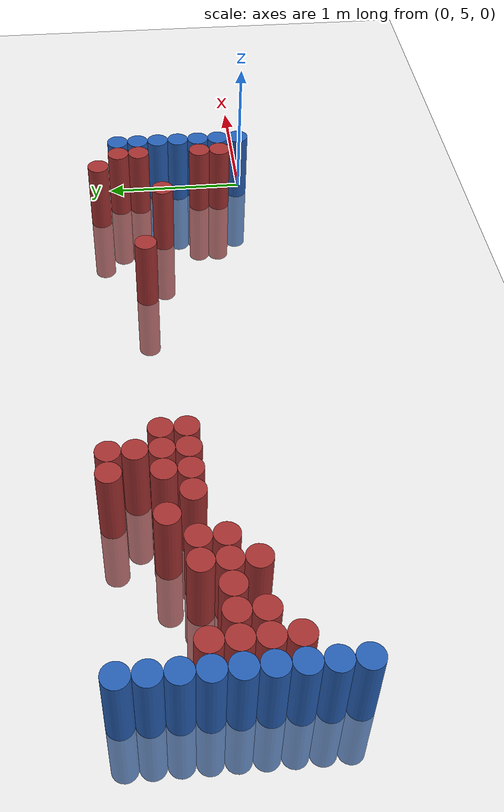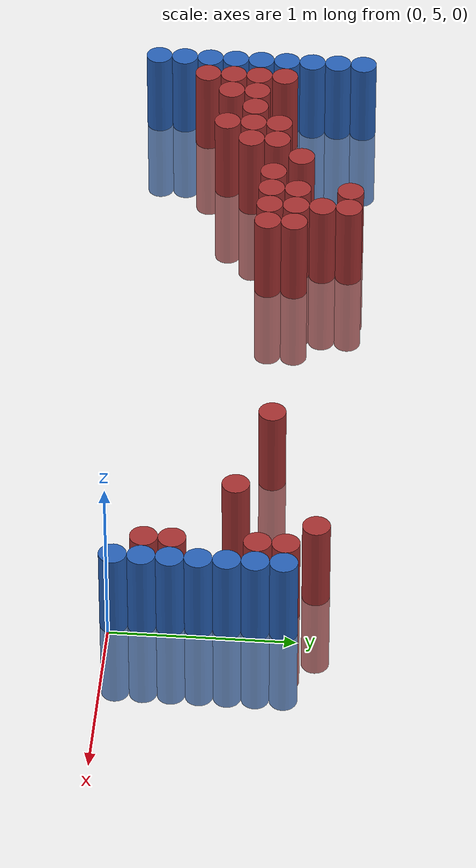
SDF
<sdf version="1.6">
 <world name="default">
  <model name="ground_plane">
   <static>1</static>
   <link name="link">
    <collision name="collision">
     <geometry><plane><normal>0 0 1</normal><size>100 100</size></plane></geometry>
     <surface><friction><ode><mu>100</mu><mu2>50</mu2></ode></friction></surface>
    </collision>
    <visual name="visual">
     <cast_shadows>0</cast_shadows>
     <geometry><plane><normal>0 0 1</normal><size>100 100</size></plane></geometry>
     <material>
      <script><uri>file://media/materials/scripts/gazebo.material</uri><name>Gazebo/Grey</name></script>
     </material>
    </visual>
   </link>
  </model>
  <model name="unit_cylinder_93">
   <static>1</static>
   <pose>-4.425000 4.875000 0.000000 0.000000 0.000000 0.000000</pose>
   <link name="link">
    <inertial>
     <mass>1</mass>
     <inertia><ixx>0.145833</ixx><ixy>0</ixy><ixz>0</ixz><iyy>0.145833</iyy><iyz>0</iyz><izz>0.125</izz></inertia>
    </inertial>
    <collision name="collision">
     <geometry><cylinder><radius>0.075000</radius><length>1</length></cylinder></geometry>
    </collision>
    <visual name="visual">
     <geometry><cylinder><radius>0.075000</radius><length>1</length></cylinder></geometry>
     <material>
      <ambient>0.152000 0.379000 0.720000 1</ambient>
      <diffuse>0.152000 0.379000 0.720000 1</diffuse>
     </material>
     <material>
      <script><name>Gazebo/Grey</name><uri>file://media/materials/scripts/gazebo.material</uri></script>
     </material>
    </visual>
   </link>
  </model>
  <model name="unit_cylinder_94">
   <static>1</static>
   <pose>-0.075000 5.025000 0.000000 0.000000 0.000000 0.000000</pose>
   <link name="link">
    <inertial>
     <mass>1</mass>
     <inertia><ixx>0.145833</ixx><ixy>0</ixy><ixz>0</ixz><iyy>0.145833</iyy><iyz>0</iyz><izz>0.125</izz></inertia>
    </inertial>
    <collision name="collision">
     <geometry><cylinder><radius>0.075000</radius><length>1</length></cylinder></geometry>
    </collision>
    <visual name="visual">
     <geometry><cylinder><radius>0.075000</radius><length>1</length></cylinder></geometry>
     <material>
      <ambient>0.152000 0.379000 0.720000 1</ambient>
      <diffuse>0.152000 0.379000 0.720000 1</diffuse>
     </material>
     <material>
      <script><name>Gazebo/Grey</name><uri>file://media/materials/scripts/gazebo.material</uri></script>
     </material>
    </visual>
   </link>
  </model>
  <model name="unit_cylinder_95">
   <static>1</static>
   <pose>-4.425000 5.025000 0.000000 0.000000 0.000000 0.000000</pose>
   <link name="link">
    <inertial>
     <mass>1</mass>
     <inertia><ixx>0.145833</ixx><ixy>0</ixy><ixz>0</ixz><iyy>0.145833</iyy><iyz>0</iyz><izz>0.125</izz></inertia>
    </inertial>
    <collision name="collision">
     <geometry><cylinder><radius>0.075000</radius><length>1</length></cylinder></geometry>
    </collision>
    <visual name="visual">
     <geometry><cylinder><radius>0.075000</radius><length>1</length></cylinder></geometry>
     <material>
      <ambient>0.152000 0.379000 0.720000 1</ambient>
      <diffuse>0.152000 0.379000 0.720000 1</diffuse>
     </material>
     <material>
      <script><name>Gazebo/Grey</name><uri>file://media/materials/scripts/gazebo.material</uri></script>
     </material>
    </visual>
   </link>
  </model>
  <model name="unit_cylinder_96">
   <static>1</static>
   <pose>-4.425000 5.175000 0.000000 0.000000 0.000000 0.000000</pose>
   <link name="link">
    <inertial>
     <mass>1</mass>
     <inertia><ixx>0.145833</ixx><ixy>0</ixy><ixz>0</ixz><iyy>0.145833</iyy><iyz>0</iyz><izz>0.125</izz></inertia>
    </inertial>
    <collision name="collision">
     <geometry><cylinder><radius>0.075000</radius><length>1</length></cylinder></geometry>
    </collision>
    <visual name="visual">
     <geometry><cylinder><radius>0.075000</radius><length>1</length></cylinder></geometry>
     <material>
      <ambient>0.152000 0.379000 0.720000 1</ambient>
      <diffuse>0.152000 0.379000 0.720000 1</diffuse>
     </material>
     <material>
      <script><name>Gazebo/Grey</name><uri>file://media/materials/scripts/gazebo.material</uri></script>
     </material>
    </visual>
   </link>
  </model>
  <model name="unit_cylinder_97">
   <static>1</static>
   <pose>-4.425000 5.325000 0.000000 0.000000 0.000000 0.000000</pose>
   <link name="link">
    <inertial>
     <mass>1</mass>
     <inertia><ixx>0.145833</ixx><ixy>0</ixy><ixz>0</ixz><iyy>0.145833</iyy><iyz>0</iyz><izz>0.125</izz></inertia>
    </inertial>
    <collision name="collision">
     <geometry><cylinder><radius>0.075000</radius><length>1</length></cylinder></geometry>
    </collision>
    <visual name="visual">
     <geometry><cylinder><radius>0.075000</radius><length>1</length></cylinder></geometry>
     <material>
      <ambient>0.152000 0.379000 0.720000 1</ambient>
      <diffuse>0.152000 0.379000 0.720000 1</diffuse>
     </material>
     <material>
      <script><name>Gazebo/Grey</name><uri>file://media/materials/scripts/gazebo.material</uri></script>
     </material>
    </visual>
   </link>
  </model>
  <model name="unit_cylinder_98">
   <static>1</static>
   <pose>-4.425000 5.475000 0.000000 0.000000 0.000000 0.000000</pose>
   <link name="link">
    <inertial>
     <mass>1</mass>
     <inertia><ixx>0.145833</ixx><ixy>0</ixy><ixz>0</ixz><iyy>0.145833</iyy><iyz>0</iyz><izz>0.125</izz></inertia>
    </inertial>
    <collision name="collision">
     <geometry><cylinder><radius>0.075000</radius><length>1</length></cylinder></geometry>
    </collision>
    <visual name="visual">
     <geometry><cylinder><radius>0.075000</radius><length>1</length></cylinder></geometry>
     <material>
      <ambient>0.152000 0.379000 0.720000 1</ambient>
      <diffuse>0.152000 0.379000 0.720000 1</diffuse>
     </material>
     <material>
      <script><name>Gazebo/Grey</name><uri>file://media/materials/scripts/gazebo.material</uri></script>
     </material>
    </visual>
   </link>
  </model>
  <model name="unit_cylinder_99">
   <static>1</static>
   <pose>-4.425000 5.625000 0.000000 0.000000 0.000000 0.000000</pose>
   <link name="link">
    <inertial>
     <mass>1</mass>
     <inertia><ixx>0.145833</ixx><ixy>0</ixy><ixz>0</ixz><iyy>0.145833</iyy><iyz>0</iyz><izz>0.125</izz></inertia>
    </inertial>
    <collision name="collision">
     <geometry><cylinder><radius>0.075000</radius><length>1</length></cylinder></geometry>
    </collision>
    <visual name="visual">
     <geometry><cylinder><radius>0.075000</radius><length>1</length></cylinder></geometry>
     <material>
      <ambient>0.152000 0.379000 0.720000 1</ambient>
      <diffuse>0.152000 0.379000 0.720000 1</diffuse>
     </material>
     <material>
      <script><name>Gazebo/Grey</name><uri>file://media/materials/scripts/gazebo.material</uri></script>
     </material>
    </visual>
   </link>
  </model>
  <model name="unit_cylinder_100">
   <static>1</static>
   <pose>-4.425000 5.775000 0.000000 0.000000 0.000000 0.000000</pose>
   <link name="link">
    <inertial>
     <mass>1</mass>
     <inertia><ixx>0.145833</ixx><ixy>0</ixy><ixz>0</ixz><iyy>0.145833</iyy><iyz>0</iyz><izz>0.125</izz></inertia>
    </inertial>
    <collision name="collision">
     <geometry><cylinder><radius>0.075000</radius><length>1</length></cylinder></geometry>
    </collision>
    <visual name="visual">
     <geometry><cylinder><radius>0.075000</radius><length>1</length></cylinder></geometry>
     <material>
      <ambient>0.152000 0.379000 0.720000 1</ambient>
      <diffuse>0.152000 0.379000 0.720000 1</diffuse>
     </material>
     <material>
      <script><name>Gazebo/Grey</name><uri>file://media/materials/scripts/gazebo.material</uri></script>
     </material>
    </visual>
   </link>
  </model>
  <model name="unit_cylinder_101">
   <static>1</static>
   <pose>-4.425000 5.925000 0.000000 0.000000 0.000000 0.000000</pose>
   <link name="link">
    <inertial>
     <mass>1</mass>
     <inertia><ixx>0.145833</ixx><ixy>0</ixy><ixz>0</ixz><iyy>0.145833</iyy><iyz>0</iyz><izz>0.125</izz></inertia>
    </inertial>
    <collision name="collision">
     <geometry><cylinder><radius>0.075000</radius><length>1</length></cylinder></geometry>
    </collision>
    <visual name="visual">
     <geometry><cylinder><radius>0.075000</radius><length>1</length></cylinder></geometry>
     <material>
      <ambient>0.152000 0.379000 0.720000 1</ambient>
      <diffuse>0.152000 0.379000 0.720000 1</diffuse>
     </material>
     <material>
      <script><name>Gazebo/Grey</name><uri>file://media/materials/scripts/gazebo.material</uri></script>
     </material>
    </visual>
   </link>
  </model>
  <model name="unit_cylinder_102">
   <static>1</static>
   <pose>-4.425000 6.075000 0.000000 0.000000 0.000000 0.000000</pose>
   <link name="link">
    <inertial>
     <mass>1</mass>
     <inertia><ixx>0.145833</ixx><ixy>0</ixy><ixz>0</ixz><iyy>0.145833</iyy><iyz>0</iyz><izz>0.125</izz></inertia>
    </inertial>
    <collision name="collision">
     <geometry><cylinder><radius>0.075000</radius><length>1</length></cylinder></geometry>
    </collision>
    <visual name="visual">
     <geometry><cylinder><radius>0.075000</radius><length>1</length></cylinder></geometry>
     <material>
      <ambient>0.152000 0.379000 0.720000 1</ambient>
      <diffuse>0.152000 0.379000 0.720000 1</diffuse>
     </material>
     <material>
      <script><name>Gazebo/Grey</name><uri>file://media/materials/scripts/gazebo.material</uri></script>
     </material>
    </visual>
   </link>
  </model>
  <model name="unit_cylinder_126">
   <static>1</static>
   <pose>-4.275000 5.175000 0.000000 0.000000 0.000000 0.000000</pose>
   <link name="link">
    <inertial>
     <mass>1</mass>
     <inertia><ixx>0.145833</ixx><ixy>0</ixy><ixz>0</ixz><iyy>0.145833</iyy><iyz>0</iyz><izz>0.125</izz></inertia>
    </inertial>
    <collision name="collision">
     <geometry><cylinder><radius>0.075000</radius><length>1</length></cylinder></geometry>
    </collision>
    <visual name="visual">
     <geometry><cylinder><radius>0.075000</radius><length>1</length></cylinder></geometry>
     <material>
      <ambient>0.648000 0.192000 0.192000 1</ambient>
      <diffuse>0.648000 0.192000 0.192000 1</diffuse>
     </material>
     <material>
      <script><name>Gazebo/Grey</name><uri>file://media/materials/scripts/gazebo.material</uri></script>
     </material>
    </visual>
   </link>
  </model>
  <model name="unit_cylinder_127">
   <static>1</static>
   <pose>-4.275000 5.325000 0.000000 0.000000 0.000000 0.000000</pose>
   <link name="link">
    <inertial>
     <mass>1</mass>
     <inertia><ixx>0.145833</ixx><ixy>0</ixy><ixz>0</ixz><iyy>0.145833</iyy><iyz>0</iyz><izz>0.125</izz></inertia>
    </inertial>
    <collision name="collision">
     <geometry><cylinder><radius>0.075000</radius><length>1</length></cylinder></geometry>
    </collision>
    <visual name="visual">
     <geometry><cylinder><radius>0.075000</radius><length>1</length></cylinder></geometry>
     <material>
      <ambient>0.648000 0.192000 0.192000 1</ambient>
      <diffuse>0.648000 0.192000 0.192000 1</diffuse>
     </material>
     <material>
      <script><name>Gazebo/Grey</name><uri>file://media/materials/scripts/gazebo.material</uri></script>
     </material>
    </visual>
   </link>
  </model>
  <model name="unit_cylinder_128">
   <static>1</static>
   <pose>-4.275000 5.475000 0.000000 0.000000 0.000000 0.000000</pose>
   <link name="link">
    <inertial>
     <mass>1</mass>
     <inertia><ixx>0.145833</ixx><ixy>0</ixy><ixz>0</ixz><iyy>0.145833</iyy><iyz>0</iyz><izz>0.125</izz></inertia>
    </inertial>
    <collision name="collision">
     <geometry><cylinder><radius>0.075000</radius><length>1</length></cylinder></geometry>
    </collision>
    <visual name="visual">
     <geometry><cylinder><radius>0.075000</radius><length>1</length></cylinder></geometry>
     <material>
      <ambient>0.648000 0.192000 0.192000 1</ambient>
      <diffuse>0.648000 0.192000 0.192000 1</diffuse>
     </material>
     <material>
      <script><name>Gazebo/Grey</name><uri>file://media/materials/scripts/gazebo.material</uri></script>
     </material>
    </visual>
   </link>
  </model>
  <model name="unit_cylinder_129">
   <static>1</static>
   <pose>-4.275000 5.625000 0.000000 0.000000 0.000000 0.000000</pose>
   <link name="link">
    <inertial>
     <mass>1</mass>
     <inertia><ixx>0.145833</ixx><ixy>0</ixy><ixz>0</ixz><iyy>0.145833</iyy><iyz>0</iyz><izz>0.125</izz></inertia>
    </inertial>
    <collision name="collision">
     <geometry><cylinder><radius>0.075000</radius><length>1</length></cylinder></geometry>
    </collision>
    <visual name="visual">
     <geometry><cylinder><radius>0.075000</radius><length>1</length></cylinder></geometry>
     <material>
      <ambient>0.648000 0.192000 0.192000 1</ambient>
      <diffuse>0.648000 0.192000 0.192000 1</diffuse>
     </material>
     <material>
      <script><name>Gazebo/Grey</name><uri>file://media/materials/scripts/gazebo.material</uri></script>
     </material>
    </visual>
   </link>
  </model>
  <model name="unit_cylinder_140">
   <static>1</static>
   <pose>-4.125000 5.325000 0.000000 0.000000 0.000000 0.000000</pose>
   <link name="link">
    <inertial>
     <mass>1</mass>
     <inertia><ixx>0.145833</ixx><ixy>0</ixy><ixz>0</ixz><iyy>0.145833</iyy><iyz>0</iyz><izz>0.125</izz></inertia>
    </inertial>
    <collision name="collision">
     <geometry><cylinder><radius>0.075000</radius><length>1</length></cylinder></geometry>
    </collision>
    <visual name="visual">
     <geometry><cylinder><radius>0.075000</radius><length>1</length></cylinder></geometry>
     <material>
      <ambient>0.648000 0.192000 0.192000 1</ambient>
      <diffuse>0.648000 0.192000 0.192000 1</diffuse>
     </material>
     <material>
      <script><name>Gazebo/Grey</name><uri>file://media/materials/scripts/gazebo.material</uri></script>
     </material>
    </visual>
   </link>
  </model>
  <model name="unit_cylinder_141">
   <static>1</static>
   <pose>-4.125000 5.475000 0.000000 0.000000 0.000000 0.000000</pose>
   <link name="link">
    <inertial>
     <mass>1</mass>
     <inertia><ixx>0.145833</ixx><ixy>0</ixy><ixz>0</ixz><iyy>0.145833</iyy><iyz>0</iyz><izz>0.125</izz></inertia>
    </inertial>
    <collision name="collision">
     <geometry><cylinder><radius>0.075000</radius><length>1</length></cylinder></geometry>
    </collision>
    <visual name="visual">
     <geometry><cylinder><radius>0.075000</radius><length>1</length></cylinder></geometry>
     <material>
      <ambient>0.648000 0.192000 0.192000 1</ambient>
      <diffuse>0.648000 0.192000 0.192000 1</diffuse>
     </material>
     <material>
      <script><name>Gazebo/Grey</name><uri>file://media/materials/scripts/gazebo.material</uri></script>
     </material>
    </visual>
   </link>
  </model>
  <model name="unit_cylinder_144">
   <static>1</static>
   <pose>-3.975000 5.475000 0.000000 0.000000 0.000000 0.000000</pose>
   <link name="link">
    <inertial>
     <mass>1</mass>
     <inertia><ixx>0.145833</ixx><ixy>0</ixy><ixz>0</ixz><iyy>0.145833</iyy><iyz>0</iyz><izz>0.125</izz></inertia>
    </inertial>
    <collision name="collision">
     <geometry><cylinder><radius>0.075000</radius><length>1</length></cylinder></geometry>
    </collision>
    <visual name="visual">
     <geometry><cylinder><radius>0.075000</radius><length>1</length></cylinder></geometry>
     <material>
      <ambient>0.648000 0.192000 0.192000 1</ambient>
      <diffuse>0.648000 0.192000 0.192000 1</diffuse>
     </material>
     <material>
      <script><name>Gazebo/Grey</name><uri>file://media/materials/scripts/gazebo.material</uri></script>
     </material>
    </visual>
   </link>
  </model>
  <model name="unit_cylinder_148">
   <static>1</static>
   <pose>-3.825000 5.325000 0.000000 0.000000 0.000000 0.000000</pose>
   <link name="link">
    <inertial>
     <mass>1</mass>
     <inertia><ixx>0.145833</ixx><ixy>0</ixy><ixz>0</ixz><iyy>0.145833</iyy><iyz>0</iyz><izz>0.125</izz></inertia>
    </inertial>
    <collision name="collision">
     <geometry><cylinder><radius>0.075000</radius><length>1</length></cylinder></geometry>
    </collision>
    <visual name="visual">
     <geometry><cylinder><radius>0.075000</radius><length>1</length></cylinder></geometry>
     <material>
      <ambient>0.648000 0.192000 0.192000 1</ambient>
      <diffuse>0.648000 0.192000 0.192000 1</diffuse>
     </material>
     <material>
      <script><name>Gazebo/Grey</name><uri>file://media/materials/scripts/gazebo.material</uri></script>
     </material>
    </visual>
   </link>
  </model>
  <model name="unit_cylinder_149">
   <static>1</static>
   <pose>-3.825000 5.475000 0.000000 0.000000 0.000000 0.000000</pose>
   <link name="link">
    <inertial>
     <mass>1</mass>
     <inertia><ixx>0.145833</ixx><ixy>0</ixy><ixz>0</ixz><iyy>0.145833</iyy><iyz>0</iyz><izz>0.125</izz></inertia>
    </inertial>
    <collision name="collision">
     <geometry><cylinder><radius>0.075000</radius><length>1</length></cylinder></geometry>
    </collision>
    <visual name="visual">
     <geometry><cylinder><radius>0.075000</radius><length>1</length></cylinder></geometry>
     <material>
      <ambient>0.648000 0.192000 0.192000 1</ambient>
      <diffuse>0.648000 0.192000 0.192000 1</diffuse>
     </material>
     <material>
      <script><name>Gazebo/Grey</name><uri>file://media/materials/scripts/gazebo.material</uri></script>
     </material>
    </visual>
   </link>
  </model>
  <model name="unit_cylinder_150">
   <static>1</static>
   <pose>-3.825000 5.625000 0.000000 0.000000 0.000000 0.000000</pose>
   <link name="link">
    <inertial>
     <mass>1</mass>
     <inertia><ixx>0.145833</ixx><ixy>0</ixy><ixz>0</ixz><iyy>0.145833</iyy><iyz>0</iyz><izz>0.125</izz></inertia>
    </inertial>
    <collision name="collision">
     <geometry><cylinder><radius>0.075000</radius><length>1</length></cylinder></geometry>
    </collision>
    <visual name="visual">
     <geometry><cylinder><radius>0.075000</radius><length>1</length></cylinder></geometry>
     <material>
      <ambient>0.648000 0.192000 0.192000 1</ambient>
      <diffuse>0.648000 0.192000 0.192000 1</diffuse>
     </material>
     <material>
      <script><name>Gazebo/Grey</name><uri>file://media/materials/scripts/gazebo.material</uri></script>
     </material>
    </visual>
   </link>
  </model>
  <model name="unit_cylinder_154">
   <static>1</static>
   <pose>-3.675000 5.475000 0.000000 0.000000 0.000000 0.000000</pose>
   <link name="link">
    <inertial>
     <mass>1</mass>
     <inertia><ixx>0.145833</ixx><ixy>0</ixy><ixz>0</ixz><iyy>0.145833</iyy><iyz>0</iyz><izz>0.125</izz></inertia>
    </inertial>
    <collision name="collision">
     <geometry><cylinder><radius>0.075000</radius><length>1</length></cylinder></geometry>
    </collision>
    <visual name="visual">
     <geometry><cylinder><radius>0.075000</radius><length>1</length></cylinder></geometry>
     <material>
      <ambient>0.648000 0.192000 0.192000 1</ambient>
      <diffuse>0.648000 0.192000 0.192000 1</diffuse>
     </material>
     <material>
      <script><name>Gazebo/Grey</name><uri>file://media/materials/scripts/gazebo.material</uri></script>
     </material>
    </visual>
   </link>
  </model>
  <model name="unit_cylinder_155">
   <static>1</static>
   <pose>-3.675000 5.625000 0.000000 0.000000 0.000000 0.000000</pose>
   <link name="link">
    <inertial>
     <mass>1</mass>
     <inertia><ixx>0.145833</ixx><ixy>0</ixy><ixz>0</ixz><iyy>0.145833</iyy><iyz>0</iyz><izz>0.125</izz></inertia>
    </inertial>
    <collision name="collision">
     <geometry><cylinder><radius>0.075000</radius><length>1</length></cylinder></geometry>
    </collision>
    <visual name="visual">
     <geometry><cylinder><radius>0.075000</radius><length>1</length></cylinder></geometry>
     <material>
      <ambient>0.648000 0.192000 0.192000 1</ambient>
      <diffuse>0.648000 0.192000 0.192000 1</diffuse>
     </material>
     <material>
      <script><name>Gazebo/Grey</name><uri>file://media/materials/scripts/gazebo.material</uri></script>
     </material>
    </visual>
   </link>
  </model>
  <model name="unit_cylinder_158">
   <static>1</static>
   <pose>-3.525000 5.775000 0.000000 0.000000 0.000000 0.000000</pose>
   <link name="link">
    <inertial>
     <mass>1</mass>
     <inertia><ixx>0.145833</ixx><ixy>0</ixy><ixz>0</ixz><iyy>0.145833</iyy><iyz>0</iyz><izz>0.125</izz></inertia>
    </inertial>
    <collision name="collision">
     <geometry><cylinder><radius>0.075000</radius><length>1</length></cylinder></geometry>
    </collision>
    <visual name="visual">
     <geometry><cylinder><radius>0.075000</radius><length>1</length></cylinder></geometry>
     <material>
      <ambient>0.648000 0.192000 0.192000 1</ambient>
      <diffuse>0.648000 0.192000 0.192000 1</diffuse>
     </material>
     <material>
      <script><name>Gazebo/Grey</name><uri>file://media/materials/scripts/gazebo.material</uri></script>
     </material>
    </visual>
   </link>
  </model>
  <model name="unit_cylinder_165">
   <static>1</static>
   <pose>-3.375000 5.625000 0.000000 0.000000 0.000000 0.000000</pose>
   <link name="link">
    <inertial>
     <mass>1</mass>
     <inertia><ixx>0.145833</ixx><ixy>0</ixy><ixz>0</ixz><iyy>0.145833</iyy><iyz>0</iyz><izz>0.125</izz></inertia>
    </inertial>
    <collision name="collision">
     <geometry><cylinder><radius>0.075000</radius><length>1</length></cylinder></geometry>
    </collision>
    <visual name="visual">
     <geometry><cylinder><radius>0.075000</radius><length>1</length></cylinder></geometry>
     <material>
      <ambient>0.648000 0.192000 0.192000 1</ambient>
      <diffuse>0.648000 0.192000 0.192000 1</diffuse>
     </material>
     <material>
      <script><name>Gazebo/Grey</name><uri>file://media/materials/scripts/gazebo.material</uri></script>
     </material>
    </visual>
   </link>
  </model>
  <model name="unit_cylinder_169">
   <static>1</static>
   <pose>-3.225000 5.625000 0.000000 0.000000 0.000000 0.000000</pose>
   <link name="link">
    <inertial>
     <mass>1</mass>
     <inertia><ixx>0.145833</ixx><ixy>0</ixy><ixz>0</ixz><iyy>0.145833</iyy><iyz>0</iyz><izz>0.125</izz></inertia>
    </inertial>
    <collision name="collision">
     <geometry><cylinder><radius>0.075000</radius><length>1</length></cylinder></geometry>
    </collision>
    <visual name="visual">
     <geometry><cylinder><radius>0.075000</radius><length>1</length></cylinder></geometry>
     <material>
      <ambient>0.648000 0.192000 0.192000 1</ambient>
      <diffuse>0.648000 0.192000 0.192000 1</diffuse>
     </material>
     <material>
      <script><name>Gazebo/Grey</name><uri>file://media/materials/scripts/gazebo.material</uri></script>
     </material>
    </visual>
   </link>
  </model>
  <model name="unit_cylinder_170">
   <static>1</static>
   <pose>-3.225000 5.775000 0.000000 0.000000 0.000000 0.000000</pose>
   <link name="link">
    <inertial>
     <mass>1</mass>
     <inertia><ixx>0.145833</ixx><ixy>0</ixy><ixz>0</ixz><iyy>0.145833</iyy><iyz>0</iyz><izz>0.125</izz></inertia>
    </inertial>
    <collision name="collision">
     <geometry><cylinder><radius>0.075000</radius><length>1</length></cylinder></geometry>
    </collision>
    <visual name="visual">
     <geometry><cylinder><radius>0.075000</radius><length>1</length></cylinder></geometry>
     <material>
      <ambient>0.648000 0.192000 0.192000 1</ambient>
      <diffuse>0.648000 0.192000 0.192000 1</diffuse>
     </material>
     <material>
      <script><name>Gazebo/Grey</name><uri>file://media/materials/scripts/gazebo.material</uri></script>
     </material>
    </visual>
   </link>
  </model>
  <model name="unit_cylinder_171">
   <static>1</static>
   <pose>-3.225000 6.075000 0.000000 0.000000 0.000000 0.000000</pose>
   <link name="link">
    <inertial>
     <mass>1</mass>
     <inertia><ixx>0.145833</ixx><ixy>0</ixy><ixz>0</ixz><iyy>0.145833</iyy><iyz>0</iyz><izz>0.125</izz></inertia>
    </inertial>
    <collision name="collision">
     <geometry><cylinder><radius>0.075000</radius><length>1</length></cylinder></geometry>
    </collision>
    <visual name="visual">
     <geometry><cylinder><radius>0.075000</radius><length>1</length></cylinder></geometry>
     <material>
      <ambient>0.648000 0.192000 0.192000 1</ambient>
      <diffuse>0.648000 0.192000 0.192000 1</diffuse>
     </material>
     <material>
      <script><name>Gazebo/Grey</name><uri>file://media/materials/scripts/gazebo.material</uri></script>
     </material>
    </visual>
   </link>
  </model>
  <model name="unit_cylinder_177">
   <static>1</static>
   <pose>-3.075000 5.625000 0.000000 0.000000 0.000000 0.000000</pose>
   <link name="link">
    <inertial>
     <mass>1</mass>
     <inertia><ixx>0.145833</ixx><ixy>0</ixy><ixz>0</ixz><iyy>0.145833</iyy><iyz>0</iyz><izz>0.125</izz></inertia>
    </inertial>
    <collision name="collision">
     <geometry><cylinder><radius>0.075000</radius><length>1</length></cylinder></geometry>
    </collision>
    <visual name="visual">
     <geometry><cylinder><radius>0.075000</radius><length>1</length></cylinder></geometry>
     <material>
      <ambient>0.648000 0.192000 0.192000 1</ambient>
      <diffuse>0.648000 0.192000 0.192000 1</diffuse>
     </material>
     <material>
      <script><name>Gazebo/Grey</name><uri>file://media/materials/scripts/gazebo.material</uri></script>
     </material>
    </visual>
   </link>
  </model>
  <model name="unit_cylinder_178">
   <static>1</static>
   <pose>-3.075000 5.775000 0.000000 0.000000 0.000000 0.000000</pose>
   <link name="link">
    <inertial>
     <mass>1</mass>
     <inertia><ixx>0.145833</ixx><ixy>0</ixy><ixz>0</ixz><iyy>0.145833</iyy><iyz>0</iyz><izz>0.125</izz></inertia>
    </inertial>
    <collision name="collision">
     <geometry><cylinder><radius>0.075000</radius><length>1</length></cylinder></geometry>
    </collision>
    <visual name="visual">
     <geometry><cylinder><radius>0.075000</radius><length>1</length></cylinder></geometry>
     <material>
      <ambient>0.648000 0.192000 0.192000 1</ambient>
      <diffuse>0.648000 0.192000 0.192000 1</diffuse>
     </material>
     <material>
      <script><name>Gazebo/Grey</name><uri>file://media/materials/scripts/gazebo.material</uri></script>
     </material>
    </visual>
   </link>
  </model>
  <model name="unit_cylinder_179">
   <static>1</static>
   <pose>-3.075000 5.925000 0.000000 0.000000 0.000000 0.000000</pose>
   <link name="link">
    <inertial>
     <mass>1</mass>
     <inertia><ixx>0.145833</ixx><ixy>0</ixy><ixz>0</ixz><iyy>0.145833</iyy><iyz>0</iyz><izz>0.125</izz></inertia>
    </inertial>
    <collision name="collision">
     <geometry><cylinder><radius>0.075000</radius><length>1</length></cylinder></geometry>
    </collision>
    <visual name="visual">
     <geometry><cylinder><radius>0.075000</radius><length>1</length></cylinder></geometry>
     <material>
      <ambient>0.648000 0.192000 0.192000 1</ambient>
      <diffuse>0.648000 0.192000 0.192000 1</diffuse>
     </material>
     <material>
      <script><name>Gazebo/Grey</name><uri>file://media/materials/scripts/gazebo.material</uri></script>
     </material>
    </visual>
   </link>
  </model>
  <model name="unit_cylinder_180">
   <static>1</static>
   <pose>-3.075000 6.075000 0.000000 0.000000 0.000000 0.000000</pose>
   <link name="link">
    <inertial>
     <mass>1</mass>
     <inertia><ixx>0.145833</ixx><ixy>0</ixy><ixz>0</ixz><iyy>0.145833</iyy><iyz>0</iyz><izz>0.125</izz></inertia>
    </inertial>
    <collision name="collision">
     <geometry><cylinder><radius>0.075000</radius><length>1</length></cylinder></geometry>
    </collision>
    <visual name="visual">
     <geometry><cylinder><radius>0.075000</radius><length>1</length></cylinder></geometry>
     <material>
      <ambient>0.648000 0.192000 0.192000 1</ambient>
      <diffuse>0.648000 0.192000 0.192000 1</diffuse>
     </material>
     <material>
      <script><name>Gazebo/Grey</name><uri>file://media/materials/scripts/gazebo.material</uri></script>
     </material>
    </visual>
   </link>
  </model>
  <model name="unit_cylinder_182">
   <static>1</static>
   <pose>-2.925000 5.625000 0.000000 0.000000 0.000000 0.000000</pose>
   <link name="link">
    <inertial>
     <mass>1</mass>
     <inertia><ixx>0.145833</ixx><ixy>0</ixy><ixz>0</ixz><iyy>0.145833</iyy><iyz>0</iyz><izz>0.125</izz></inertia>
    </inertial>
    <collision name="collision">
     <geometry><cylinder><radius>0.075000</radius><length>1</length></cylinder></geometry>
    </collision>
    <visual name="visual">
     <geometry><cylinder><radius>0.075000</radius><length>1</length></cylinder></geometry>
     <material>
      <ambient>0.648000 0.192000 0.192000 1</ambient>
      <diffuse>0.648000 0.192000 0.192000 1</diffuse>
     </material>
     <material>
      <script><name>Gazebo/Grey</name><uri>file://media/materials/scripts/gazebo.material</uri></script>
     </material>
    </visual>
   </link>
  </model>
  <model name="unit_cylinder_183">
   <static>1</static>
   <pose>-2.925000 5.775000 0.000000 0.000000 0.000000 0.000000</pose>
   <link name="link">
    <inertial>
     <mass>1</mass>
     <inertia><ixx>0.145833</ixx><ixy>0</ixy><ixz>0</ixz><iyy>0.145833</iyy><iyz>0</iyz><izz>0.125</izz></inertia>
    </inertial>
    <collision name="collision">
     <geometry><cylinder><radius>0.075000</radius><length>1</length></cylinder></geometry>
    </collision>
    <visual name="visual">
     <geometry><cylinder><radius>0.075000</radius><length>1</length></cylinder></geometry>
     <material>
      <ambient>0.648000 0.192000 0.192000 1</ambient>
      <diffuse>0.648000 0.192000 0.192000 1</diffuse>
     </material>
     <material>
      <script><name>Gazebo/Grey</name><uri>file://media/materials/scripts/gazebo.material</uri></script>
     </material>
    </visual>
   </link>
  </model>
  <model name="unit_cylinder_211">
   <static>1</static>
   <pose>-1.275000 5.775000 0.000000 0.000000 0.000000 0.000000</pose>
   <link name="link">
    <inertial>
     <mass>1</mass>
     <inertia><ixx>0.145833</ixx><ixy>0</ixy><ixz>0</ixz><iyy>0.145833</iyy><iyz>0</iyz><izz>0.125</izz></inertia>
    </inertial>
    <collision name="collision">
     <geometry><cylinder><radius>0.075000</radius><length>1</length></cylinder></geometry>
    </collision>
    <visual name="visual">
     <geometry><cylinder><radius>0.075000</radius><length>1</length></cylinder></geometry>
     <material>
      <ambient>0.648000 0.192000 0.192000 1</ambient>
      <diffuse>0.648000 0.192000 0.192000 1</diffuse>
     </material>
     <material>
      <script><name>Gazebo/Grey</name><uri>file://media/materials/scripts/gazebo.material</uri></script>
     </material>
    </visual>
   </link>
  </model>
  <model name="unit_cylinder_225">
   <static>1</static>
   <pose>-0.675000 5.625000 0.000000 0.000000 0.000000 0.000000</pose>
   <link name="link">
    <inertial>
     <mass>1</mass>
     <inertia><ixx>0.145833</ixx><ixy>0</ixy><ixz>0</ixz><iyy>0.145833</iyy><iyz>0</iyz><izz>0.125</izz></inertia>
    </inertial>
    <collision name="collision">
     <geometry><cylinder><radius>0.075000</radius><length>1</length></cylinder></geometry>
    </collision>
    <visual name="visual">
     <geometry><cylinder><radius>0.075000</radius><length>1</length></cylinder></geometry>
     <material>
      <ambient>0.648000 0.192000 0.192000 1</ambient>
      <diffuse>0.648000 0.192000 0.192000 1</diffuse>
     </material>
     <material>
      <script><name>Gazebo/Grey</name><uri>file://media/materials/scripts/gazebo.material</uri></script>
     </material>
    </visual>
   </link>
  </model>
  <model name="unit_cylinder_233">
   <static>1</static>
   <pose>-0.375000 6.075000 0.000000 0.000000 0.000000 0.000000</pose>
   <link name="link">
    <inertial>
     <mass>1</mass>
     <inertia><ixx>0.145833</ixx><ixy>0</ixy><ixz>0</ixz><iyy>0.145833</iyy><iyz>0</iyz><izz>0.125</izz></inertia>
    </inertial>
    <collision name="collision">
     <geometry><cylinder><radius>0.075000</radius><length>1</length></cylinder></geometry>
    </collision>
    <visual name="visual">
     <geometry><cylinder><radius>0.075000</radius><length>1</length></cylinder></geometry>
     <material>
      <ambient>0.648000 0.192000 0.192000 1</ambient>
      <diffuse>0.648000 0.192000 0.192000 1</diffuse>
     </material>
     <material>
      <script><name>Gazebo/Grey</name><uri>file://media/materials/scripts/gazebo.material</uri></script>
     </material>
    </visual>
   </link>
  </model>
  <model name="unit_cylinder_236">
   <static>1</static>
   <pose>-0.225000 5.175000 0.000000 0.000000 0.000000 0.000000</pose>
   <link name="link">
    <inertial>
     <mass>1</mass>
     <inertia><ixx>0.145833</ixx><ixy>0</ixy><ixz>0</ixz><iyy>0.145833</iyy><iyz>0</iyz><izz>0.125</izz></inertia>
    </inertial>
    <collision name="collision">
     <geometry><cylinder><radius>0.075000</radius><length>1</length></cylinder></geometry>
    </collision>
    <visual name="visual">
     <geometry><cylinder><radius>0.075000</radius><length>1</length></cylinder></geometry>
     <material>
      <ambient>0.648000 0.192000 0.192000 1</ambient>
      <diffuse>0.648000 0.192000 0.192000 1</diffuse>
     </material>
     <material>
      <script><name>Gazebo/Grey</name><uri>file://media/materials/scripts/gazebo.material</uri></script>
     </material>
    </visual>
   </link>
  </model>
  <model name="unit_cylinder_237">
   <static>1</static>
   <pose>-0.225000 5.325000 0.000000 0.000000 0.000000 0.000000</pose>
   <link name="link">
    <inertial>
     <mass>1</mass>
     <inertia><ixx>0.145833</ixx><ixy>0</ixy><ixz>0</ixz><iyy>0.145833</iyy><iyz>0</iyz><izz>0.125</izz></inertia>
    </inertial>
    <collision name="collision">
     <geometry><cylinder><radius>0.075000</radius><length>1</length></cylinder></geometry>
    </collision>
    <visual name="visual">
     <geometry><cylinder><radius>0.075000</radius><length>1</length></cylinder></geometry>
     <material>
      <ambient>0.648000 0.192000 0.192000 1</ambient>
      <diffuse>0.648000 0.192000 0.192000 1</diffuse>
     </material>
     <material>
      <script><name>Gazebo/Grey</name><uri>file://media/materials/scripts/gazebo.material</uri></script>
     </material>
    </visual>
   </link>
  </model>
  <model name="unit_cylinder_238">
   <static>1</static>
   <pose>-0.225000 5.775000 0.000000 0.000000 0.000000 0.000000</pose>
   <link name="link">
    <inertial>
     <mass>1</mass>
     <inertia><ixx>0.145833</ixx><ixy>0</ixy><ixz>0</ixz><iyy>0.145833</iyy><iyz>0</iyz><izz>0.125</izz></inertia>
    </inertial>
    <collision name="collision">
     <geometry><cylinder><radius>0.075000</radius><length>1</length></cylinder></geometry>
    </collision>
    <visual name="visual">
     <geometry><cylinder><radius>0.075000</radius><length>1</length></cylinder></geometry>
     <material>
      <ambient>0.648000 0.192000 0.192000 1</ambient>
      <diffuse>0.648000 0.192000 0.192000 1</diffuse>
     </material>
     <material>
      <script><name>Gazebo/Grey</name><uri>file://media/materials/scripts/gazebo.material</uri></script>
     </material>
    </visual>
   </link>
  </model>
  <model name="unit_cylinder_239">
   <static>1</static>
   <pose>-0.225000 5.925000 0.000000 0.000000 0.000000 0.000000</pose>
   <link name="link">
    <inertial>
     <mass>1</mass>
     <inertia><ixx>0.145833</ixx><ixy>0</ixy><ixz>0</ixz><iyy>0.145833</iyy><iyz>0</iyz><izz>0.125</izz></inertia>
    </inertial>
    <collision name="collision">
     <geometry><cylinder><radius>0.075000</radius><length>1</length></cylinder></geometry>
    </collision>
    <visual name="visual">
     <geometry><cylinder><radius>0.075000</radius><length>1</length></cylinder></geometry>
     <material>
      <ambient>0.648000 0.192000 0.192000 1</ambient>
      <diffuse>0.648000 0.192000 0.192000 1</diffuse>
     </material>
     <material>
      <script><name>Gazebo/Grey</name><uri>file://media/materials/scripts/gazebo.material</uri></script>
     </material>
    </visual>
   </link>
  </model>
  <model name="unit_cylinder_247">
   <static>1</static>
   <pose>-0.075000 5.175000 0.000000 0.000000 0.000000 0.000000</pose>
   <link name="link">
    <inertial>
     <mass>1</mass>
     <inertia><ixx>0.145833</ixx><ixy>0</ixy><ixz>0</ixz><iyy>0.145833</iyy><iyz>0</iyz><izz>0.125</izz></inertia>
    </inertial>
    <collision name="collision">
     <geometry><cylinder><radius>0.075000</radius><length>1</length></cylinder></geometry>
    </collision>
    <visual name="visual">
     <geometry><cylinder><radius>0.075000</radius><length>1</length></cylinder></geometry>
     <material>
      <ambient>0.152000 0.379000 0.720000 1</ambient>
      <diffuse>0.152000 0.379000 0.720000 1</diffuse>
     </material>
     <material>
      <script><name>Gazebo/Grey</name><uri>file://media/materials/scripts/gazebo.material</uri></script>
     </material>
    </visual>
   </link>
  </model>
  <model name="unit_cylinder_248">
   <static>1</static>
   <pose>-0.075000 5.325000 0.000000 0.000000 0.000000 0.000000</pose>
   <link name="link">
    <inertial>
     <mass>1</mass>
     <inertia><ixx>0.145833</ixx><ixy>0</ixy><ixz>0</ixz><iyy>0.145833</iyy><iyz>0</iyz><izz>0.125</izz></inertia>
    </inertial>
    <collision name="collision">
     <geometry><cylinder><radius>0.075000</radius><length>1</length></cylinder></geometry>
    </collision>
    <visual name="visual">
     <geometry><cylinder><radius>0.075000</radius><length>1</length></cylinder></geometry>
     <material>
      <ambient>0.152000 0.379000 0.720000 1</ambient>
      <diffuse>0.152000 0.379000 0.720000 1</diffuse>
     </material>
     <material>
      <script><name>Gazebo/Grey</name><uri>file://media/materials/scripts/gazebo.material</uri></script>
     </material>
    </visual>
   </link>
  </model>
  <model name="unit_cylinder_249">
   <static>1</static>
   <pose>-0.075000 5.475000 0.000000 0.000000 0.000000 0.000000</pose>
   <link name="link">
    <inertial>
     <mass>1</mass>
     <inertia><ixx>0.145833</ixx><ixy>0</ixy><ixz>0</ixz><iyy>0.145833</iyy><iyz>0</iyz><izz>0.125</izz></inertia>
    </inertial>
    <collision name="collision">
     <geometry><cylinder><radius>0.075000</radius><length>1</length></cylinder></geometry>
    </collision>
    <visual name="visual">
     <geometry><cylinder><radius>0.075000</radius><length>1</length></cylinder></geometry>
     <material>
      <ambient>0.152000 0.379000 0.720000 1</ambient>
      <diffuse>0.152000 0.379000 0.720000 1</diffuse>
     </material>
     <material>
      <script><name>Gazebo/Grey</name><uri>file://media/materials/scripts/gazebo.material</uri></script>
     </material>
    </visual>
   </link>
  </model>
  <model name="unit_cylinder_250">
   <static>1</static>
   <pose>-0.075000 5.625000 0.000000 0.000000 0.000000 0.000000</pose>
   <link name="link">
    <inertial>
     <mass>1</mass>
     <inertia><ixx>0.145833</ixx><ixy>0</ixy><ixz>0</ixz><iyy>0.145833</iyy><iyz>0</iyz><izz>0.125</izz></inertia>
    </inertial>
    <collision name="collision">
     <geometry><cylinder><radius>0.075000</radius><length>1</length></cylinder></geometry>
    </collision>
    <visual name="visual">
     <geometry><cylinder><radius>0.075000</radius><length>1</length></cylinder></geometry>
     <material>
      <ambient>0.152000 0.379000 0.720000 1</ambient>
      <diffuse>0.152000 0.379000 0.720000 1</diffuse>
     </material>
     <material>
      <script><name>Gazebo/Grey</name><uri>file://media/materials/scripts/gazebo.material</uri></script>
     </material>
    </visual>
   </link>
  </model>
  <model name="unit_cylinder_251">
   <static>1</static>
   <pose>-0.075000 5.775000 0.000000 0.000000 0.000000 0.000000</pose>
   <link name="link">
    <inertial>
     <mass>1</mass>
     <inertia><ixx>0.145833</ixx><ixy>0</ixy><ixz>0</ixz><iyy>0.145833</iyy><iyz>0</iyz><izz>0.125</izz></inertia>
    </inertial>
    <collision name="collision">
     <geometry><cylinder><radius>0.075000</radius><length>1</length></cylinder></geometry>
    </collision>
    <visual name="visual">
     <geometry><cylinder><radius>0.075000</radius><length>1</length></cylinder></geometry>
     <material>
      <ambient>0.152000 0.379000 0.720000 1</ambient>
      <diffuse>0.152000 0.379000 0.720000 1</diffuse>
     </material>
     <material>
      <script><name>Gazebo/Grey</name><uri>file://media/materials/scripts/gazebo.material</uri></script>
     </material>
    </visual>
   </link>
  </model>
  <model name="unit_cylinder_252">
   <static>1</static>
   <pose>-0.075000 5.925000 0.000000 0.000000 0.000000 0.000000</pose>
   <link name="link">
    <inertial>
     <mass>1</mass>
     <inertia><ixx>0.145833</ixx><ixy>0</ixy><ixz>0</ixz><iyy>0.145833</iyy><iyz>0</iyz><izz>0.125</izz></inertia>
    </inertial>
    <collision name="collision">
     <geometry><cylinder><radius>0.075000</radius><length>1</length></cylinder></geometry>
    </collision>
    <visual name="visual">
     <geometry><cylinder><radius>0.075000</radius><length>1</length></cylinder></geometry>
     <material>
      <ambient>0.152000 0.379000 0.720000 1</ambient>
      <diffuse>0.152000 0.379000 0.720000 1</diffuse>
     </material>
     <material>
      <script><name>Gazebo/Grey</name><uri>file://media/materials/scripts/gazebo.material</uri></script>
     </material>
    </visual>
   </link>
  </model>
 </world>
</sdf>
